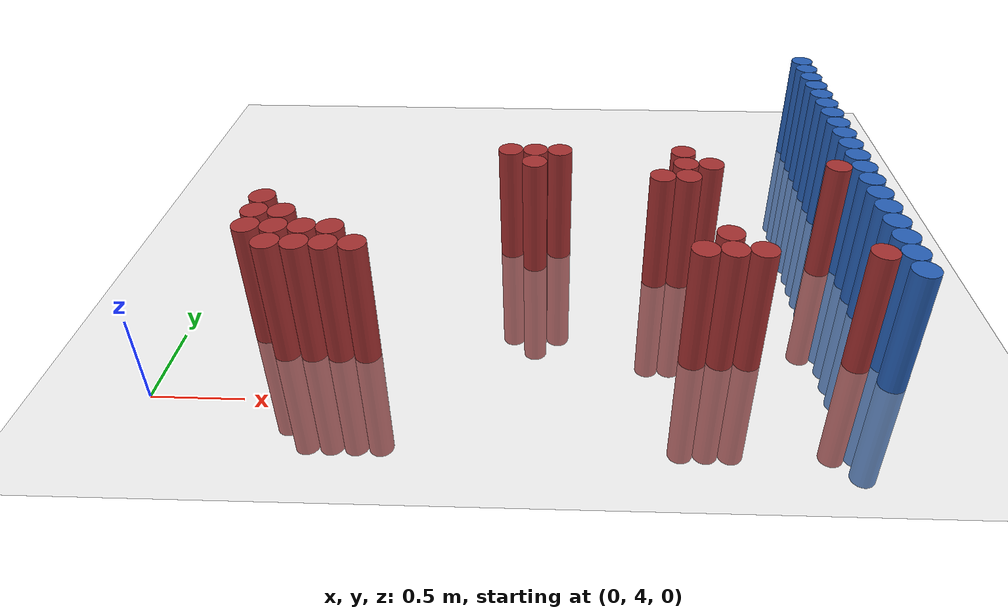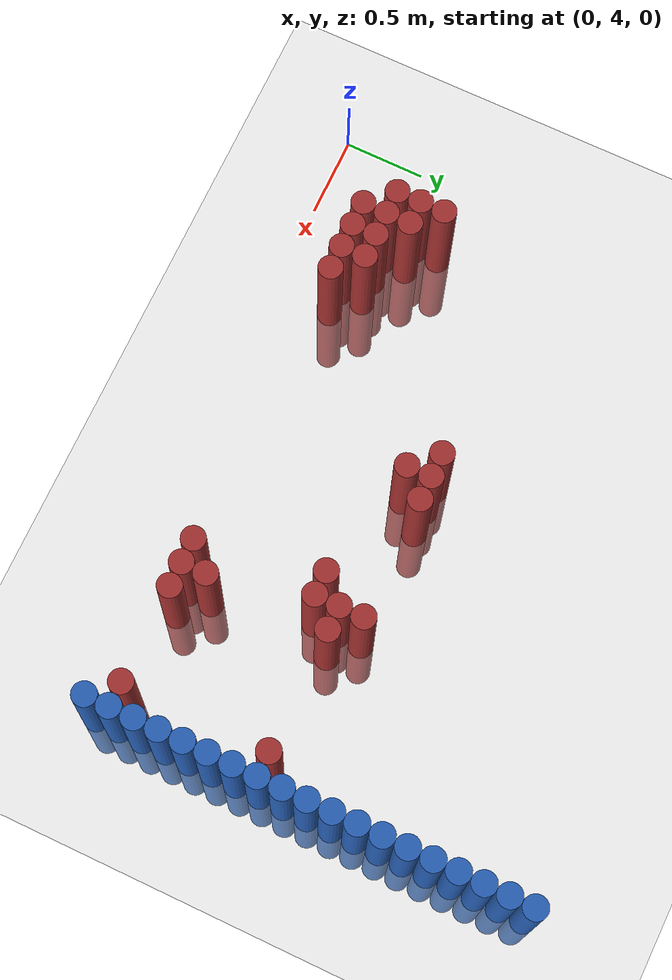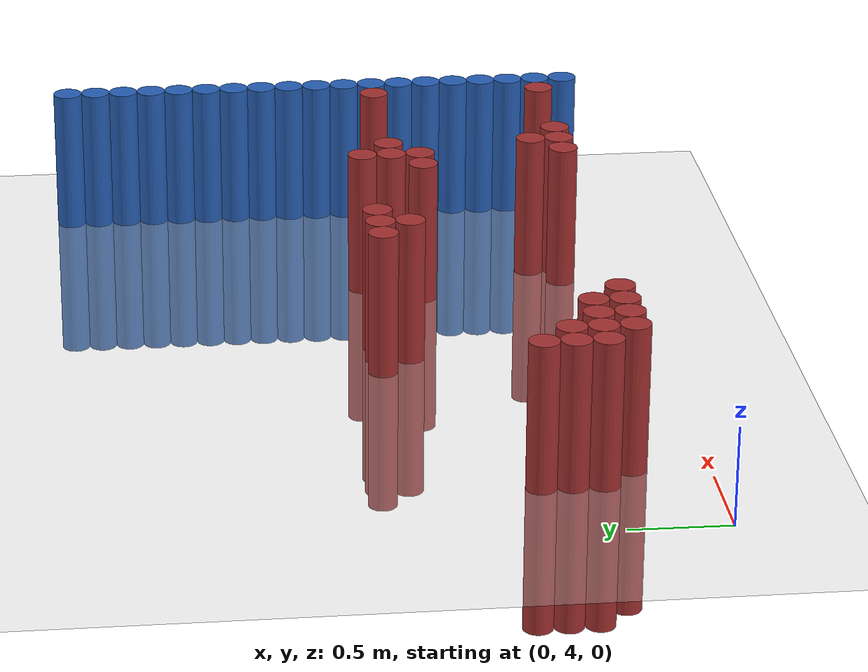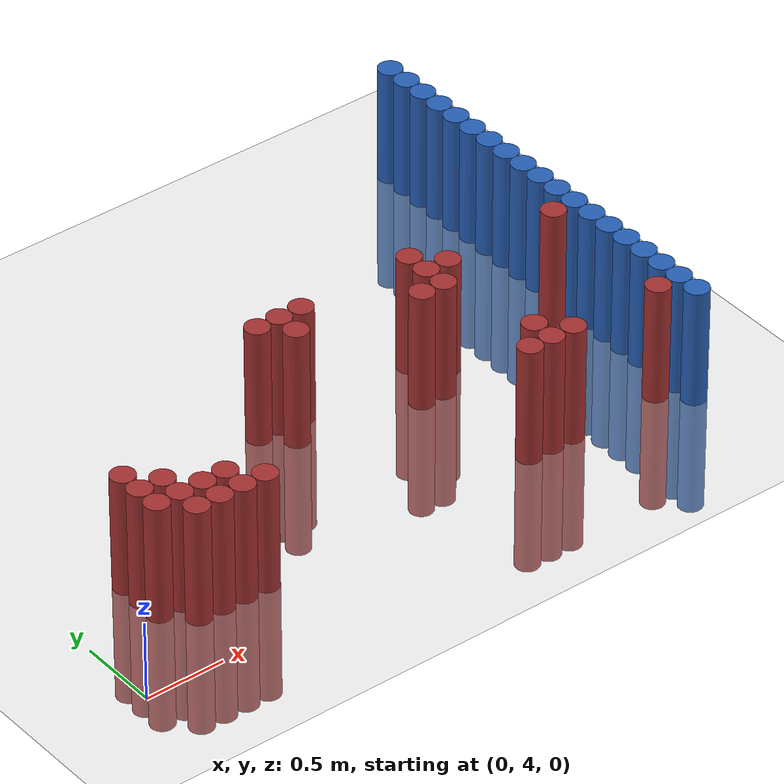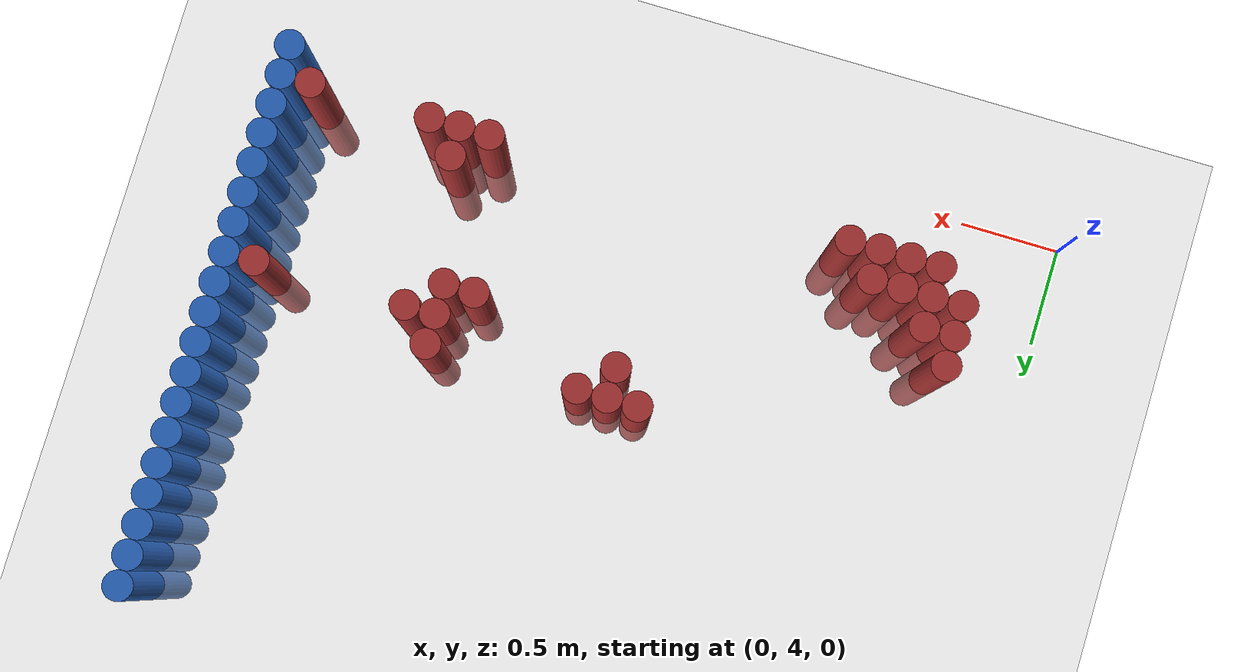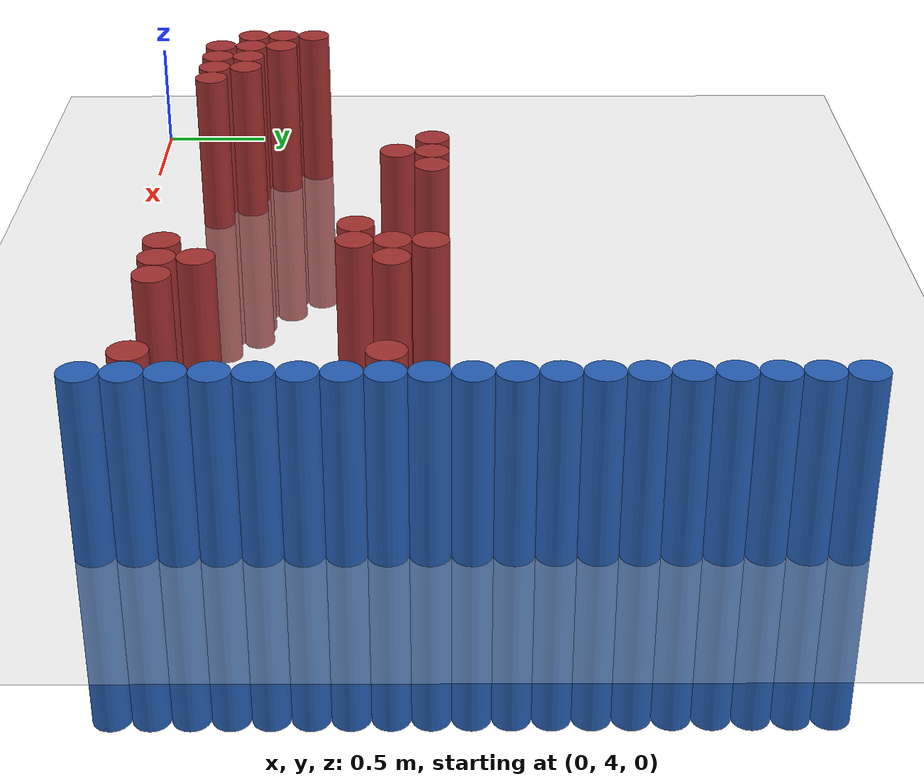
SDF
<sdf version="1.6">
 <world name="default">
  <model name="ground_plane">
   <static>1</static>
   <link name="link">
    <collision name="collision">
     <geometry><plane><normal>0 0 1</normal><size>100 100</size></plane></geometry>
     <surface><friction><ode><mu>100</mu><mu2>50</mu2></ode></friction></surface>
    </collision>
    <visual name="visual">
     <cast_shadows>0</cast_shadows>
     <geometry><plane><normal>0 0 1</normal><size>100 100</size></plane></geometry>
     <material>
      <script><uri>file://media/materials/scripts/gazebo.material</uri><name>Gazebo/Grey</name></script>
     </material>
    </visual>
   </link>
  </model>
  <model name="unit_cylinder_170">
   <static>1</static>
   <pose>3.925000 4.225000 0.000000 0.000000 0.000000 0.000000</pose>
   <link name="link">
    <inertial>
     <mass>1</mass>
     <inertia><ixx>0.145833</ixx><ixy>0</ixy><ixz>0</ixz><iyy>0.145833</iyy><iyz>0</iyz><izz>0.125</izz></inertia>
    </inertial>
    <collision name="collision">
     <geometry><cylinder><radius>0.075000</radius><length>1.5</length></cylinder></geometry>
    </collision>
    <visual name="visual">
     <geometry><cylinder><radius>0.075000</radius><length>1.5</length></cylinder></geometry>
     <material>
      <ambient>0.152000 0.379000 0.720000 1</ambient>
      <diffuse>0.152000 0.379000 0.720000 1</diffuse>
     </material>
     <material>
      <script><name>Gazebo/Grey</name><uri>file://media/materials/scripts/gazebo.material</uri></script>
     </material>
    </visual>
   </link>
  </model>
  <model name="unit_cylinder_172">
   <static>1</static>
   <pose>3.925000 4.375000 0.000000 0.000000 0.000000 0.000000</pose>
   <link name="link">
    <inertial>
     <mass>1</mass>
     <inertia><ixx>0.145833</ixx><ixy>0</ixy><ixz>0</ixz><iyy>0.145833</iyy><iyz>0</iyz><izz>0.125</izz></inertia>
    </inertial>
    <collision name="collision">
     <geometry><cylinder><radius>0.075000</radius><length>1.5</length></cylinder></geometry>
    </collision>
    <visual name="visual">
     <geometry><cylinder><radius>0.075000</radius><length>1.5</length></cylinder></geometry>
     <material>
      <ambient>0.152000 0.379000 0.720000 1</ambient>
      <diffuse>0.152000 0.379000 0.720000 1</diffuse>
     </material>
     <material>
      <script><name>Gazebo/Grey</name><uri>file://media/materials/scripts/gazebo.material</uri></script>
     </material>
    </visual>
   </link>
  </model>
  <model name="unit_cylinder_174">
   <static>1</static>
   <pose>3.925000 4.525000 0.000000 0.000000 0.000000 0.000000</pose>
   <link name="link">
    <inertial>
     <mass>1</mass>
     <inertia><ixx>0.145833</ixx><ixy>0</ixy><ixz>0</ixz><iyy>0.145833</iyy><iyz>0</iyz><izz>0.125</izz></inertia>
    </inertial>
    <collision name="collision">
     <geometry><cylinder><radius>0.075000</radius><length>1.5</length></cylinder></geometry>
    </collision>
    <visual name="visual">
     <geometry><cylinder><radius>0.075000</radius><length>1.5</length></cylinder></geometry>
     <material>
      <ambient>0.152000 0.379000 0.720000 1</ambient>
      <diffuse>0.152000 0.379000 0.720000 1</diffuse>
     </material>
     <material>
      <script><name>Gazebo/Grey</name><uri>file://media/materials/scripts/gazebo.material</uri></script>
     </material>
    </visual>
   </link>
  </model>
  <model name="unit_cylinder_176">
   <static>1</static>
   <pose>3.925000 4.675000 0.000000 0.000000 0.000000 0.000000</pose>
   <link name="link">
    <inertial>
     <mass>1</mass>
     <inertia><ixx>0.145833</ixx><ixy>0</ixy><ixz>0</ixz><iyy>0.145833</iyy><iyz>0</iyz><izz>0.125</izz></inertia>
    </inertial>
    <collision name="collision">
     <geometry><cylinder><radius>0.075000</radius><length>1.5</length></cylinder></geometry>
    </collision>
    <visual name="visual">
     <geometry><cylinder><radius>0.075000</radius><length>1.5</length></cylinder></geometry>
     <material>
      <ambient>0.152000 0.379000 0.720000 1</ambient>
      <diffuse>0.152000 0.379000 0.720000 1</diffuse>
     </material>
     <material>
      <script><name>Gazebo/Grey</name><uri>file://media/materials/scripts/gazebo.material</uri></script>
     </material>
    </visual>
   </link>
  </model>
  <model name="unit_cylinder_178">
   <static>1</static>
   <pose>3.925000 4.825000 0.000000 0.000000 0.000000 0.000000</pose>
   <link name="link">
    <inertial>
     <mass>1</mass>
     <inertia><ixx>0.145833</ixx><ixy>0</ixy><ixz>0</ixz><iyy>0.145833</iyy><iyz>0</iyz><izz>0.125</izz></inertia>
    </inertial>
    <collision name="collision">
     <geometry><cylinder><radius>0.075000</radius><length>1.5</length></cylinder></geometry>
    </collision>
    <visual name="visual">
     <geometry><cylinder><radius>0.075000</radius><length>1.5</length></cylinder></geometry>
     <material>
      <ambient>0.152000 0.379000 0.720000 1</ambient>
      <diffuse>0.152000 0.379000 0.720000 1</diffuse>
     </material>
     <material>
      <script><name>Gazebo/Grey</name><uri>file://media/materials/scripts/gazebo.material</uri></script>
     </material>
    </visual>
   </link>
  </model>
  <model name="unit_cylinder_180">
   <static>1</static>
   <pose>3.925000 4.975000 0.000000 0.000000 0.000000 0.000000</pose>
   <link name="link">
    <inertial>
     <mass>1</mass>
     <inertia><ixx>0.145833</ixx><ixy>0</ixy><ixz>0</ixz><iyy>0.145833</iyy><iyz>0</iyz><izz>0.125</izz></inertia>
    </inertial>
    <collision name="collision">
     <geometry><cylinder><radius>0.075000</radius><length>1.5</length></cylinder></geometry>
    </collision>
    <visual name="visual">
     <geometry><cylinder><radius>0.075000</radius><length>1.5</length></cylinder></geometry>
     <material>
      <ambient>0.152000 0.379000 0.720000 1</ambient>
      <diffuse>0.152000 0.379000 0.720000 1</diffuse>
     </material>
     <material>
      <script><name>Gazebo/Grey</name><uri>file://media/materials/scripts/gazebo.material</uri></script>
     </material>
    </visual>
   </link>
  </model>
  <model name="unit_cylinder_182">
   <static>1</static>
   <pose>3.925000 5.125000 0.000000 0.000000 0.000000 0.000000</pose>
   <link name="link">
    <inertial>
     <mass>1</mass>
     <inertia><ixx>0.145833</ixx><ixy>0</ixy><ixz>0</ixz><iyy>0.145833</iyy><iyz>0</iyz><izz>0.125</izz></inertia>
    </inertial>
    <collision name="collision">
     <geometry><cylinder><radius>0.075000</radius><length>1.5</length></cylinder></geometry>
    </collision>
    <visual name="visual">
     <geometry><cylinder><radius>0.075000</radius><length>1.5</length></cylinder></geometry>
     <material>
      <ambient>0.152000 0.379000 0.720000 1</ambient>
      <diffuse>0.152000 0.379000 0.720000 1</diffuse>
     </material>
     <material>
      <script><name>Gazebo/Grey</name><uri>file://media/materials/scripts/gazebo.material</uri></script>
     </material>
    </visual>
   </link>
  </model>
  <model name="unit_cylinder_184">
   <static>1</static>
   <pose>3.925000 5.275000 0.000000 0.000000 0.000000 0.000000</pose>
   <link name="link">
    <inertial>
     <mass>1</mass>
     <inertia><ixx>0.145833</ixx><ixy>0</ixy><ixz>0</ixz><iyy>0.145833</iyy><iyz>0</iyz><izz>0.125</izz></inertia>
    </inertial>
    <collision name="collision">
     <geometry><cylinder><radius>0.075000</radius><length>1.5</length></cylinder></geometry>
    </collision>
    <visual name="visual">
     <geometry><cylinder><radius>0.075000</radius><length>1.5</length></cylinder></geometry>
     <material>
      <ambient>0.152000 0.379000 0.720000 1</ambient>
      <diffuse>0.152000 0.379000 0.720000 1</diffuse>
     </material>
     <material>
      <script><name>Gazebo/Grey</name><uri>file://media/materials/scripts/gazebo.material</uri></script>
     </material>
    </visual>
   </link>
  </model>
  <model name="unit_cylinder_186">
   <static>1</static>
   <pose>3.925000 5.425000 0.000000 0.000000 0.000000 0.000000</pose>
   <link name="link">
    <inertial>
     <mass>1</mass>
     <inertia><ixx>0.145833</ixx><ixy>0</ixy><ixz>0</ixz><iyy>0.145833</iyy><iyz>0</iyz><izz>0.125</izz></inertia>
    </inertial>
    <collision name="collision">
     <geometry><cylinder><radius>0.075000</radius><length>1.5</length></cylinder></geometry>
    </collision>
    <visual name="visual">
     <geometry><cylinder><radius>0.075000</radius><length>1.5</length></cylinder></geometry>
     <material>
      <ambient>0.152000 0.379000 0.720000 1</ambient>
      <diffuse>0.152000 0.379000 0.720000 1</diffuse>
     </material>
     <material>
      <script><name>Gazebo/Grey</name><uri>file://media/materials/scripts/gazebo.material</uri></script>
     </material>
    </visual>
   </link>
  </model>
  <model name="unit_cylinder_188">
   <static>1</static>
   <pose>3.925000 5.575000 0.000000 0.000000 0.000000 0.000000</pose>
   <link name="link">
    <inertial>
     <mass>1</mass>
     <inertia><ixx>0.145833</ixx><ixy>0</ixy><ixz>0</ixz><iyy>0.145833</iyy><iyz>0</iyz><izz>0.125</izz></inertia>
    </inertial>
    <collision name="collision">
     <geometry><cylinder><radius>0.075000</radius><length>1.5</length></cylinder></geometry>
    </collision>
    <visual name="visual">
     <geometry><cylinder><radius>0.075000</radius><length>1.5</length></cylinder></geometry>
     <material>
      <ambient>0.152000 0.379000 0.720000 1</ambient>
      <diffuse>0.152000 0.379000 0.720000 1</diffuse>
     </material>
     <material>
      <script><name>Gazebo/Grey</name><uri>file://media/materials/scripts/gazebo.material</uri></script>
     </material>
    </visual>
   </link>
  </model>
  <model name="unit_cylinder_190">
   <static>1</static>
   <pose>3.925000 5.725000 0.000000 0.000000 0.000000 0.000000</pose>
   <link name="link">
    <inertial>
     <mass>1</mass>
     <inertia><ixx>0.145833</ixx><ixy>0</ixy><ixz>0</ixz><iyy>0.145833</iyy><iyz>0</iyz><izz>0.125</izz></inertia>
    </inertial>
    <collision name="collision">
     <geometry><cylinder><radius>0.075000</radius><length>1.5</length></cylinder></geometry>
    </collision>
    <visual name="visual">
     <geometry><cylinder><radius>0.075000</radius><length>1.5</length></cylinder></geometry>
     <material>
      <ambient>0.152000 0.379000 0.720000 1</ambient>
      <diffuse>0.152000 0.379000 0.720000 1</diffuse>
     </material>
     <material>
      <script><name>Gazebo/Grey</name><uri>file://media/materials/scripts/gazebo.material</uri></script>
     </material>
    </visual>
   </link>
  </model>
  <model name="unit_cylinder_192">
   <static>1</static>
   <pose>3.925000 5.875000 0.000000 0.000000 0.000000 0.000000</pose>
   <link name="link">
    <inertial>
     <mass>1</mass>
     <inertia><ixx>0.145833</ixx><ixy>0</ixy><ixz>0</ixz><iyy>0.145833</iyy><iyz>0</iyz><izz>0.125</izz></inertia>
    </inertial>
    <collision name="collision">
     <geometry><cylinder><radius>0.075000</radius><length>1.5</length></cylinder></geometry>
    </collision>
    <visual name="visual">
     <geometry><cylinder><radius>0.075000</radius><length>1.5</length></cylinder></geometry>
     <material>
      <ambient>0.152000 0.379000 0.720000 1</ambient>
      <diffuse>0.152000 0.379000 0.720000 1</diffuse>
     </material>
     <material>
      <script><name>Gazebo/Grey</name><uri>file://media/materials/scripts/gazebo.material</uri></script>
     </material>
    </visual>
   </link>
  </model>
  <model name="unit_cylinder_194">
   <static>1</static>
   <pose>3.925000 6.025000 0.000000 0.000000 0.000000 0.000000</pose>
   <link name="link">
    <inertial>
     <mass>1</mass>
     <inertia><ixx>0.145833</ixx><ixy>0</ixy><ixz>0</ixz><iyy>0.145833</iyy><iyz>0</iyz><izz>0.125</izz></inertia>
    </inertial>
    <collision name="collision">
     <geometry><cylinder><radius>0.075000</radius><length>1.5</length></cylinder></geometry>
    </collision>
    <visual name="visual">
     <geometry><cylinder><radius>0.075000</radius><length>1.5</length></cylinder></geometry>
     <material>
      <ambient>0.152000 0.379000 0.720000 1</ambient>
      <diffuse>0.152000 0.379000 0.720000 1</diffuse>
     </material>
     <material>
      <script><name>Gazebo/Grey</name><uri>file://media/materials/scripts/gazebo.material</uri></script>
     </material>
    </visual>
   </link>
  </model>
  <model name="unit_cylinder_196">
   <static>1</static>
   <pose>3.925000 6.175000 0.000000 0.000000 0.000000 0.000000</pose>
   <link name="link">
    <inertial>
     <mass>1</mass>
     <inertia><ixx>0.145833</ixx><ixy>0</ixy><ixz>0</ixz><iyy>0.145833</iyy><iyz>0</iyz><izz>0.125</izz></inertia>
    </inertial>
    <collision name="collision">
     <geometry><cylinder><radius>0.075000</radius><length>1.5</length></cylinder></geometry>
    </collision>
    <visual name="visual">
     <geometry><cylinder><radius>0.075000</radius><length>1.5</length></cylinder></geometry>
     <material>
      <ambient>0.152000 0.379000 0.720000 1</ambient>
      <diffuse>0.152000 0.379000 0.720000 1</diffuse>
     </material>
     <material>
      <script><name>Gazebo/Grey</name><uri>file://media/materials/scripts/gazebo.material</uri></script>
     </material>
    </visual>
   </link>
  </model>
  <model name="unit_cylinder_198">
   <static>1</static>
   <pose>3.925000 6.325000 0.000000 0.000000 0.000000 0.000000</pose>
   <link name="link">
    <inertial>
     <mass>1</mass>
     <inertia><ixx>0.145833</ixx><ixy>0</ixy><ixz>0</ixz><iyy>0.145833</iyy><iyz>0</iyz><izz>0.125</izz></inertia>
    </inertial>
    <collision name="collision">
     <geometry><cylinder><radius>0.075000</radius><length>1.5</length></cylinder></geometry>
    </collision>
    <visual name="visual">
     <geometry><cylinder><radius>0.075000</radius><length>1.5</length></cylinder></geometry>
     <material>
      <ambient>0.152000 0.379000 0.720000 1</ambient>
      <diffuse>0.152000 0.379000 0.720000 1</diffuse>
     </material>
     <material>
      <script><name>Gazebo/Grey</name><uri>file://media/materials/scripts/gazebo.material</uri></script>
     </material>
    </visual>
   </link>
  </model>
  <model name="unit_cylinder_200">
   <static>1</static>
   <pose>3.925000 6.475000 0.000000 0.000000 0.000000 0.000000</pose>
   <link name="link">
    <inertial>
     <mass>1</mass>
     <inertia><ixx>0.145833</ixx><ixy>0</ixy><ixz>0</ixz><iyy>0.145833</iyy><iyz>0</iyz><izz>0.125</izz></inertia>
    </inertial>
    <collision name="collision">
     <geometry><cylinder><radius>0.075000</radius><length>1.5</length></cylinder></geometry>
    </collision>
    <visual name="visual">
     <geometry><cylinder><radius>0.075000</radius><length>1.5</length></cylinder></geometry>
     <material>
      <ambient>0.152000 0.379000 0.720000 1</ambient>
      <diffuse>0.152000 0.379000 0.720000 1</diffuse>
     </material>
     <material>
      <script><name>Gazebo/Grey</name><uri>file://media/materials/scripts/gazebo.material</uri></script>
     </material>
    </visual>
   </link>
  </model>
  <model name="unit_cylinder_202">
   <static>1</static>
   <pose>3.925000 6.625000 0.000000 0.000000 0.000000 0.000000</pose>
   <link name="link">
    <inertial>
     <mass>1</mass>
     <inertia><ixx>0.145833</ixx><ixy>0</ixy><ixz>0</ixz><iyy>0.145833</iyy><iyz>0</iyz><izz>0.125</izz></inertia>
    </inertial>
    <collision name="collision">
     <geometry><cylinder><radius>0.075000</radius><length>1.5</length></cylinder></geometry>
    </collision>
    <visual name="visual">
     <geometry><cylinder><radius>0.075000</radius><length>1.5</length></cylinder></geometry>
     <material>
      <ambient>0.152000 0.379000 0.720000 1</ambient>
      <diffuse>0.152000 0.379000 0.720000 1</diffuse>
     </material>
     <material>
      <script><name>Gazebo/Grey</name><uri>file://media/materials/scripts/gazebo.material</uri></script>
     </material>
    </visual>
   </link>
  </model>
  <model name="unit_cylinder_204">
   <static>1</static>
   <pose>3.925000 6.775000 0.000000 0.000000 0.000000 0.000000</pose>
   <link name="link">
    <inertial>
     <mass>1</mass>
     <inertia><ixx>0.145833</ixx><ixy>0</ixy><ixz>0</ixz><iyy>0.145833</iyy><iyz>0</iyz><izz>0.125</izz></inertia>
    </inertial>
    <collision name="collision">
     <geometry><cylinder><radius>0.075000</radius><length>1.5</length></cylinder></geometry>
    </collision>
    <visual name="visual">
     <geometry><cylinder><radius>0.075000</radius><length>1.5</length></cylinder></geometry>
     <material>
      <ambient>0.152000 0.379000 0.720000 1</ambient>
      <diffuse>0.152000 0.379000 0.720000 1</diffuse>
     </material>
     <material>
      <script><name>Gazebo/Grey</name><uri>file://media/materials/scripts/gazebo.material</uri></script>
     </material>
    </visual>
   </link>
  </model>
  <model name="unit_cylinder_206">
   <static>1</static>
   <pose>3.925000 6.925000 0.000000 0.000000 0.000000 0.000000</pose>
   <link name="link">
    <inertial>
     <mass>1</mass>
     <inertia><ixx>0.145833</ixx><ixy>0</ixy><ixz>0</ixz><iyy>0.145833</iyy><iyz>0</iyz><izz>0.125</izz></inertia>
    </inertial>
    <collision name="collision">
     <geometry><cylinder><radius>0.075000</radius><length>1.5</length></cylinder></geometry>
    </collision>
    <visual name="visual">
     <geometry><cylinder><radius>0.075000</radius><length>1.5</length></cylinder></geometry>
     <material>
      <ambient>0.152000 0.379000 0.720000 1</ambient>
      <diffuse>0.152000 0.379000 0.720000 1</diffuse>
     </material>
     <material>
      <script><name>Gazebo/Grey</name><uri>file://media/materials/scripts/gazebo.material</uri></script>
     </material>
    </visual>
   </link>
  </model>
  <model name="unit_cylinder_371">
   <static>1</static>
   <pose>0.475000 4.525000 0.000000 0.000000 0.000000 0.000000</pose>
   <link name="link">
    <inertial>
     <mass>1</mass>
     <inertia><ixx>0.145833</ixx><ixy>0</ixy><ixz>0</ixz><iyy>0.145833</iyy><iyz>0</iyz><izz>0.125</izz></inertia>
    </inertial>
    <collision name="collision">
     <geometry><cylinder><radius>0.075000</radius><length>1.5</length></cylinder></geometry>
    </collision>
    <visual name="visual">
     <geometry><cylinder><radius>0.075000</radius><length>1.5</length></cylinder></geometry>
     <material>
      <ambient>0.648000 0.192000 0.192000 1</ambient>
      <diffuse>0.648000 0.192000 0.192000 1</diffuse>
     </material>
     <material>
      <script><name>Gazebo/Grey</name><uri>file://media/materials/scripts/gazebo.material</uri></script>
     </material>
    </visual>
   </link>
  </model>
  <model name="unit_cylinder_372">
   <static>1</static>
   <pose>0.475000 4.675000 0.000000 0.000000 0.000000 0.000000</pose>
   <link name="link">
    <inertial>
     <mass>1</mass>
     <inertia><ixx>0.145833</ixx><ixy>0</ixy><ixz>0</ixz><iyy>0.145833</iyy><iyz>0</iyz><izz>0.125</izz></inertia>
    </inertial>
    <collision name="collision">
     <geometry><cylinder><radius>0.075000</radius><length>1.5</length></cylinder></geometry>
    </collision>
    <visual name="visual">
     <geometry><cylinder><radius>0.075000</radius><length>1.5</length></cylinder></geometry>
     <material>
      <ambient>0.648000 0.192000 0.192000 1</ambient>
      <diffuse>0.648000 0.192000 0.192000 1</diffuse>
     </material>
     <material>
      <script><name>Gazebo/Grey</name><uri>file://media/materials/scripts/gazebo.material</uri></script>
     </material>
    </visual>
   </link>
  </model>
  <model name="unit_cylinder_373">
   <static>1</static>
   <pose>0.475000 4.825000 0.000000 0.000000 0.000000 0.000000</pose>
   <link name="link">
    <inertial>
     <mass>1</mass>
     <inertia><ixx>0.145833</ixx><ixy>0</ixy><ixz>0</ixz><iyy>0.145833</iyy><iyz>0</iyz><izz>0.125</izz></inertia>
    </inertial>
    <collision name="collision">
     <geometry><cylinder><radius>0.075000</radius><length>1.5</length></cylinder></geometry>
    </collision>
    <visual name="visual">
     <geometry><cylinder><radius>0.075000</radius><length>1.5</length></cylinder></geometry>
     <material>
      <ambient>0.648000 0.192000 0.192000 1</ambient>
      <diffuse>0.648000 0.192000 0.192000 1</diffuse>
     </material>
     <material>
      <script><name>Gazebo/Grey</name><uri>file://media/materials/scripts/gazebo.material</uri></script>
     </material>
    </visual>
   </link>
  </model>
  <model name="unit_cylinder_376">
   <static>1</static>
   <pose>0.625000 4.375000 0.000000 0.000000 0.000000 0.000000</pose>
   <link name="link">
    <inertial>
     <mass>1</mass>
     <inertia><ixx>0.145833</ixx><ixy>0</ixy><ixz>0</ixz><iyy>0.145833</iyy><iyz>0</iyz><izz>0.125</izz></inertia>
    </inertial>
    <collision name="collision">
     <geometry><cylinder><radius>0.075000</radius><length>1.5</length></cylinder></geometry>
    </collision>
    <visual name="visual">
     <geometry><cylinder><radius>0.075000</radius><length>1.5</length></cylinder></geometry>
     <material>
      <ambient>0.648000 0.192000 0.192000 1</ambient>
      <diffuse>0.648000 0.192000 0.192000 1</diffuse>
     </material>
     <material>
      <script><name>Gazebo/Grey</name><uri>file://media/materials/scripts/gazebo.material</uri></script>
     </material>
    </visual>
   </link>
  </model>
  <model name="unit_cylinder_377">
   <static>1</static>
   <pose>0.625000 4.525000 0.000000 0.000000 0.000000 0.000000</pose>
   <link name="link">
    <inertial>
     <mass>1</mass>
     <inertia><ixx>0.145833</ixx><ixy>0</ixy><ixz>0</ixz><iyy>0.145833</iyy><iyz>0</iyz><izz>0.125</izz></inertia>
    </inertial>
    <collision name="collision">
     <geometry><cylinder><radius>0.075000</radius><length>1.5</length></cylinder></geometry>
    </collision>
    <visual name="visual">
     <geometry><cylinder><radius>0.075000</radius><length>1.5</length></cylinder></geometry>
     <material>
      <ambient>0.648000 0.192000 0.192000 1</ambient>
      <diffuse>0.648000 0.192000 0.192000 1</diffuse>
     </material>
     <material>
      <script><name>Gazebo/Grey</name><uri>file://media/materials/scripts/gazebo.material</uri></script>
     </material>
    </visual>
   </link>
  </model>
  <model name="unit_cylinder_378">
   <static>1</static>
   <pose>0.625000 4.675000 0.000000 0.000000 0.000000 0.000000</pose>
   <link name="link">
    <inertial>
     <mass>1</mass>
     <inertia><ixx>0.145833</ixx><ixy>0</ixy><ixz>0</ixz><iyy>0.145833</iyy><iyz>0</iyz><izz>0.125</izz></inertia>
    </inertial>
    <collision name="collision">
     <geometry><cylinder><radius>0.075000</radius><length>1.5</length></cylinder></geometry>
    </collision>
    <visual name="visual">
     <geometry><cylinder><radius>0.075000</radius><length>1.5</length></cylinder></geometry>
     <material>
      <ambient>0.648000 0.192000 0.192000 1</ambient>
      <diffuse>0.648000 0.192000 0.192000 1</diffuse>
     </material>
     <material>
      <script><name>Gazebo/Grey</name><uri>file://media/materials/scripts/gazebo.material</uri></script>
     </material>
    </visual>
   </link>
  </model>
  <model name="unit_cylinder_382">
   <static>1</static>
   <pose>0.775000 4.375000 0.000000 0.000000 0.000000 0.000000</pose>
   <link name="link">
    <inertial>
     <mass>1</mass>
     <inertia><ixx>0.145833</ixx><ixy>0</ixy><ixz>0</ixz><iyy>0.145833</iyy><iyz>0</iyz><izz>0.125</izz></inertia>
    </inertial>
    <collision name="collision">
     <geometry><cylinder><radius>0.075000</radius><length>1.5</length></cylinder></geometry>
    </collision>
    <visual name="visual">
     <geometry><cylinder><radius>0.075000</radius><length>1.5</length></cylinder></geometry>
     <material>
      <ambient>0.648000 0.192000 0.192000 1</ambient>
      <diffuse>0.648000 0.192000 0.192000 1</diffuse>
     </material>
     <material>
      <script><name>Gazebo/Grey</name><uri>file://media/materials/scripts/gazebo.material</uri></script>
     </material>
    </visual>
   </link>
  </model>
  <model name="unit_cylinder_383">
   <static>1</static>
   <pose>0.775000 4.525000 0.000000 0.000000 0.000000 0.000000</pose>
   <link name="link">
    <inertial>
     <mass>1</mass>
     <inertia><ixx>0.145833</ixx><ixy>0</ixy><ixz>0</ixz><iyy>0.145833</iyy><iyz>0</iyz><izz>0.125</izz></inertia>
    </inertial>
    <collision name="collision">
     <geometry><cylinder><radius>0.075000</radius><length>1.5</length></cylinder></geometry>
    </collision>
    <visual name="visual">
     <geometry><cylinder><radius>0.075000</radius><length>1.5</length></cylinder></geometry>
     <material>
      <ambient>0.648000 0.192000 0.192000 1</ambient>
      <diffuse>0.648000 0.192000 0.192000 1</diffuse>
     </material>
     <material>
      <script><name>Gazebo/Grey</name><uri>file://media/materials/scripts/gazebo.material</uri></script>
     </material>
    </visual>
   </link>
  </model>
  <model name="unit_cylinder_391">
   <static>1</static>
   <pose>0.925000 4.375000 0.000000 0.000000 0.000000 0.000000</pose>
   <link name="link">
    <inertial>
     <mass>1</mass>
     <inertia><ixx>0.145833</ixx><ixy>0</ixy><ixz>0</ixz><iyy>0.145833</iyy><iyz>0</iyz><izz>0.125</izz></inertia>
    </inertial>
    <collision name="collision">
     <geometry><cylinder><radius>0.075000</radius><length>1.5</length></cylinder></geometry>
    </collision>
    <visual name="visual">
     <geometry><cylinder><radius>0.075000</radius><length>1.5</length></cylinder></geometry>
     <material>
      <ambient>0.648000 0.192000 0.192000 1</ambient>
      <diffuse>0.648000 0.192000 0.192000 1</diffuse>
     </material>
     <material>
      <script><name>Gazebo/Grey</name><uri>file://media/materials/scripts/gazebo.material</uri></script>
     </material>
    </visual>
   </link>
  </model>
  <model name="unit_cylinder_392">
   <static>1</static>
   <pose>0.925000 4.525000 0.000000 0.000000 0.000000 0.000000</pose>
   <link name="link">
    <inertial>
     <mass>1</mass>
     <inertia><ixx>0.145833</ixx><ixy>0</ixy><ixz>0</ixz><iyy>0.145833</iyy><iyz>0</iyz><izz>0.125</izz></inertia>
    </inertial>
    <collision name="collision">
     <geometry><cylinder><radius>0.075000</radius><length>1.5</length></cylinder></geometry>
    </collision>
    <visual name="visual">
     <geometry><cylinder><radius>0.075000</radius><length>1.5</length></cylinder></geometry>
     <material>
      <ambient>0.648000 0.192000 0.192000 1</ambient>
      <diffuse>0.648000 0.192000 0.192000 1</diffuse>
     </material>
     <material>
      <script><name>Gazebo/Grey</name><uri>file://media/materials/scripts/gazebo.material</uri></script>
     </material>
    </visual>
   </link>
  </model>
  <model name="unit_cylinder_397">
   <static>1</static>
   <pose>1.075000 4.375000 0.000000 0.000000 0.000000 0.000000</pose>
   <link name="link">
    <inertial>
     <mass>1</mass>
     <inertia><ixx>0.145833</ixx><ixy>0</ixy><ixz>0</ixz><iyy>0.145833</iyy><iyz>0</iyz><izz>0.125</izz></inertia>
    </inertial>
    <collision name="collision">
     <geometry><cylinder><radius>0.075000</radius><length>1.5</length></cylinder></geometry>
    </collision>
    <visual name="visual">
     <geometry><cylinder><radius>0.075000</radius><length>1.5</length></cylinder></geometry>
     <material>
      <ambient>0.648000 0.192000 0.192000 1</ambient>
      <diffuse>0.648000 0.192000 0.192000 1</diffuse>
     </material>
     <material>
      <script><name>Gazebo/Grey</name><uri>file://media/materials/scripts/gazebo.material</uri></script>
     </material>
    </visual>
   </link>
  </model>
  <model name="unit_cylinder_412">
   <static>1</static>
   <pose>1.825000 5.425000 0.000000 0.000000 0.000000 0.000000</pose>
   <link name="link">
    <inertial>
     <mass>1</mass>
     <inertia><ixx>0.145833</ixx><ixy>0</ixy><ixz>0</ixz><iyy>0.145833</iyy><iyz>0</iyz><izz>0.125</izz></inertia>
    </inertial>
    <collision name="collision">
     <geometry><cylinder><radius>0.075000</radius><length>1.5</length></cylinder></geometry>
    </collision>
    <visual name="visual">
     <geometry><cylinder><radius>0.075000</radius><length>1.5</length></cylinder></geometry>
     <material>
      <ambient>0.648000 0.192000 0.192000 1</ambient>
      <diffuse>0.648000 0.192000 0.192000 1</diffuse>
     </material>
     <material>
      <script><name>Gazebo/Grey</name><uri>file://media/materials/scripts/gazebo.material</uri></script>
     </material>
    </visual>
   </link>
  </model>
  <model name="unit_cylinder_417">
   <static>1</static>
   <pose>1.975000 5.275000 0.000000 0.000000 0.000000 0.000000</pose>
   <link name="link">
    <inertial>
     <mass>1</mass>
     <inertia><ixx>0.145833</ixx><ixy>0</ixy><ixz>0</ixz><iyy>0.145833</iyy><iyz>0</iyz><izz>0.125</izz></inertia>
    </inertial>
    <collision name="collision">
     <geometry><cylinder><radius>0.075000</radius><length>1.5</length></cylinder></geometry>
    </collision>
    <visual name="visual">
     <geometry><cylinder><radius>0.075000</radius><length>1.5</length></cylinder></geometry>
     <material>
      <ambient>0.648000 0.192000 0.192000 1</ambient>
      <diffuse>0.648000 0.192000 0.192000 1</diffuse>
     </material>
     <material>
      <script><name>Gazebo/Grey</name><uri>file://media/materials/scripts/gazebo.material</uri></script>
     </material>
    </visual>
   </link>
  </model>
  <model name="unit_cylinder_418">
   <static>1</static>
   <pose>1.975000 5.425000 0.000000 0.000000 0.000000 0.000000</pose>
   <link name="link">
    <inertial>
     <mass>1</mass>
     <inertia><ixx>0.145833</ixx><ixy>0</ixy><ixz>0</ixz><iyy>0.145833</iyy><iyz>0</iyz><izz>0.125</izz></inertia>
    </inertial>
    <collision name="collision">
     <geometry><cylinder><radius>0.075000</radius><length>1.5</length></cylinder></geometry>
    </collision>
    <visual name="visual">
     <geometry><cylinder><radius>0.075000</radius><length>1.5</length></cylinder></geometry>
     <material>
      <ambient>0.648000 0.192000 0.192000 1</ambient>
      <diffuse>0.648000 0.192000 0.192000 1</diffuse>
     </material>
     <material>
      <script><name>Gazebo/Grey</name><uri>file://media/materials/scripts/gazebo.material</uri></script>
     </material>
    </visual>
   </link>
  </model>
  <model name="unit_cylinder_419">
   <static>1</static>
   <pose>2.125000 5.425000 0.000000 0.000000 0.000000 0.000000</pose>
   <link name="link">
    <inertial>
     <mass>1</mass>
     <inertia><ixx>0.145833</ixx><ixy>0</ixy><ixz>0</ixz><iyy>0.145833</iyy><iyz>0</iyz><izz>0.125</izz></inertia>
    </inertial>
    <collision name="collision">
     <geometry><cylinder><radius>0.075000</radius><length>1.5</length></cylinder></geometry>
    </collision>
    <visual name="visual">
     <geometry><cylinder><radius>0.075000</radius><length>1.5</length></cylinder></geometry>
     <material>
      <ambient>0.648000 0.192000 0.192000 1</ambient>
      <diffuse>0.648000 0.192000 0.192000 1</diffuse>
     </material>
     <material>
      <script><name>Gazebo/Grey</name><uri>file://media/materials/scripts/gazebo.material</uri></script>
     </material>
    </visual>
   </link>
  </model>
  <model name="unit_cylinder_433">
   <static>1</static>
   <pose>2.725000 5.125000 0.000000 0.000000 0.000000 0.000000</pose>
   <link name="link">
    <inertial>
     <mass>1</mass>
     <inertia><ixx>0.145833</ixx><ixy>0</ixy><ixz>0</ixz><iyy>0.145833</iyy><iyz>0</iyz><izz>0.125</izz></inertia>
    </inertial>
    <collision name="collision">
     <geometry><cylinder><radius>0.075000</radius><length>1.5</length></cylinder></geometry>
    </collision>
    <visual name="visual">
     <geometry><cylinder><radius>0.075000</radius><length>1.5</length></cylinder></geometry>
     <material>
      <ambient>0.648000 0.192000 0.192000 1</ambient>
      <diffuse>0.648000 0.192000 0.192000 1</diffuse>
     </material>
     <material>
      <script><name>Gazebo/Grey</name><uri>file://media/materials/scripts/gazebo.material</uri></script>
     </material>
    </visual>
   </link>
  </model>
  <model name="unit_cylinder_437">
   <static>1</static>
   <pose>2.875000 4.375000 0.000000 0.000000 0.000000 0.000000</pose>
   <link name="link">
    <inertial>
     <mass>1</mass>
     <inertia><ixx>0.145833</ixx><ixy>0</ixy><ixz>0</ixz><iyy>0.145833</iyy><iyz>0</iyz><izz>0.125</izz></inertia>
    </inertial>
    <collision name="collision">
     <geometry><cylinder><radius>0.075000</radius><length>1.5</length></cylinder></geometry>
    </collision>
    <visual name="visual">
     <geometry><cylinder><radius>0.075000</radius><length>1.5</length></cylinder></geometry>
     <material>
      <ambient>0.648000 0.192000 0.192000 1</ambient>
      <diffuse>0.648000 0.192000 0.192000 1</diffuse>
     </material>
     <material>
      <script><name>Gazebo/Grey</name><uri>file://media/materials/scripts/gazebo.material</uri></script>
     </material>
    </visual>
   </link>
  </model>
  <model name="unit_cylinder_438">
   <static>1</static>
   <pose>2.875000 5.125000 0.000000 0.000000 0.000000 0.000000</pose>
   <link name="link">
    <inertial>
     <mass>1</mass>
     <inertia><ixx>0.145833</ixx><ixy>0</ixy><ixz>0</ixz><iyy>0.145833</iyy><iyz>0</iyz><izz>0.125</izz></inertia>
    </inertial>
    <collision name="collision">
     <geometry><cylinder><radius>0.075000</radius><length>1.5</length></cylinder></geometry>
    </collision>
    <visual name="visual">
     <geometry><cylinder><radius>0.075000</radius><length>1.5</length></cylinder></geometry>
     <material>
      <ambient>0.648000 0.192000 0.192000 1</ambient>
      <diffuse>0.648000 0.192000 0.192000 1</diffuse>
     </material>
     <material>
      <script><name>Gazebo/Grey</name><uri>file://media/materials/scripts/gazebo.material</uri></script>
     </material>
    </visual>
   </link>
  </model>
  <model name="unit_cylinder_439">
   <static>1</static>
   <pose>2.875000 5.275000 0.000000 0.000000 0.000000 0.000000</pose>
   <link name="link">
    <inertial>
     <mass>1</mass>
     <inertia><ixx>0.145833</ixx><ixy>0</ixy><ixz>0</ixz><iyy>0.145833</iyy><iyz>0</iyz><izz>0.125</izz></inertia>
    </inertial>
    <collision name="collision">
     <geometry><cylinder><radius>0.075000</radius><length>1.5</length></cylinder></geometry>
    </collision>
    <visual name="visual">
     <geometry><cylinder><radius>0.075000</radius><length>1.5</length></cylinder></geometry>
     <material>
      <ambient>0.648000 0.192000 0.192000 1</ambient>
      <diffuse>0.648000 0.192000 0.192000 1</diffuse>
     </material>
     <material>
      <script><name>Gazebo/Grey</name><uri>file://media/materials/scripts/gazebo.material</uri></script>
     </material>
    </visual>
   </link>
  </model>
  <model name="unit_cylinder_440">
   <static>1</static>
   <pose>2.875000 5.425000 0.000000 0.000000 0.000000 0.000000</pose>
   <link name="link">
    <inertial>
     <mass>1</mass>
     <inertia><ixx>0.145833</ixx><ixy>0</ixy><ixz>0</ixz><iyy>0.145833</iyy><iyz>0</iyz><izz>0.125</izz></inertia>
    </inertial>
    <collision name="collision">
     <geometry><cylinder><radius>0.075000</radius><length>1.5</length></cylinder></geometry>
    </collision>
    <visual name="visual">
     <geometry><cylinder><radius>0.075000</radius><length>1.5</length></cylinder></geometry>
     <material>
      <ambient>0.648000 0.192000 0.192000 1</ambient>
      <diffuse>0.648000 0.192000 0.192000 1</diffuse>
     </material>
     <material>
      <script><name>Gazebo/Grey</name><uri>file://media/materials/scripts/gazebo.material</uri></script>
     </material>
    </visual>
   </link>
  </model>
  <model name="unit_cylinder_442">
   <static>1</static>
   <pose>3.025000 4.375000 0.000000 0.000000 0.000000 0.000000</pose>
   <link name="link">
    <inertial>
     <mass>1</mass>
     <inertia><ixx>0.145833</ixx><ixy>0</ixy><ixz>0</ixz><iyy>0.145833</iyy><iyz>0</iyz><izz>0.125</izz></inertia>
    </inertial>
    <collision name="collision">
     <geometry><cylinder><radius>0.075000</radius><length>1.5</length></cylinder></geometry>
    </collision>
    <visual name="visual">
     <geometry><cylinder><radius>0.075000</radius><length>1.5</length></cylinder></geometry>
     <material>
      <ambient>0.648000 0.192000 0.192000 1</ambient>
      <diffuse>0.648000 0.192000 0.192000 1</diffuse>
     </material>
     <material>
      <script><name>Gazebo/Grey</name><uri>file://media/materials/scripts/gazebo.material</uri></script>
     </material>
    </visual>
   </link>
  </model>
  <model name="unit_cylinder_443">
   <static>1</static>
   <pose>3.025000 4.525000 0.000000 0.000000 0.000000 0.000000</pose>
   <link name="link">
    <inertial>
     <mass>1</mass>
     <inertia><ixx>0.145833</ixx><ixy>0</ixy><ixz>0</ixz><iyy>0.145833</iyy><iyz>0</iyz><izz>0.125</izz></inertia>
    </inertial>
    <collision name="collision">
     <geometry><cylinder><radius>0.075000</radius><length>1.5</length></cylinder></geometry>
    </collision>
    <visual name="visual">
     <geometry><cylinder><radius>0.075000</radius><length>1.5</length></cylinder></geometry>
     <material>
      <ambient>0.648000 0.192000 0.192000 1</ambient>
      <diffuse>0.648000 0.192000 0.192000 1</diffuse>
     </material>
     <material>
      <script><name>Gazebo/Grey</name><uri>file://media/materials/scripts/gazebo.material</uri></script>
     </material>
    </visual>
   </link>
  </model>
  <model name="unit_cylinder_444">
   <static>1</static>
   <pose>3.025000 5.275000 0.000000 0.000000 0.000000 0.000000</pose>
   <link name="link">
    <inertial>
     <mass>1</mass>
     <inertia><ixx>0.145833</ixx><ixy>0</ixy><ixz>0</ixz><iyy>0.145833</iyy><iyz>0</iyz><izz>0.125</izz></inertia>
    </inertial>
    <collision name="collision">
     <geometry><cylinder><radius>0.075000</radius><length>1.5</length></cylinder></geometry>
    </collision>
    <visual name="visual">
     <geometry><cylinder><radius>0.075000</radius><length>1.5</length></cylinder></geometry>
     <material>
      <ambient>0.648000 0.192000 0.192000 1</ambient>
      <diffuse>0.648000 0.192000 0.192000 1</diffuse>
     </material>
     <material>
      <script><name>Gazebo/Grey</name><uri>file://media/materials/scripts/gazebo.material</uri></script>
     </material>
    </visual>
   </link>
  </model>
  <model name="unit_cylinder_449">
   <static>1</static>
   <pose>3.175000 4.375000 0.000000 0.000000 0.000000 0.000000</pose>
   <link name="link">
    <inertial>
     <mass>1</mass>
     <inertia><ixx>0.145833</ixx><ixy>0</ixy><ixz>0</ixz><iyy>0.145833</iyy><iyz>0</iyz><izz>0.125</izz></inertia>
    </inertial>
    <collision name="collision">
     <geometry><cylinder><radius>0.075000</radius><length>1.5</length></cylinder></geometry>
    </collision>
    <visual name="visual">
     <geometry><cylinder><radius>0.075000</radius><length>1.5</length></cylinder></geometry>
     <material>
      <ambient>0.648000 0.192000 0.192000 1</ambient>
      <diffuse>0.648000 0.192000 0.192000 1</diffuse>
     </material>
     <material>
      <script><name>Gazebo/Grey</name><uri>file://media/materials/scripts/gazebo.material</uri></script>
     </material>
    </visual>
   </link>
  </model>
  <model name="unit_cylinder_484">
   <static>1</static>
   <pose>3.775000 4.375000 0.000000 0.000000 0.000000 0.000000</pose>
   <link name="link">
    <inertial>
     <mass>1</mass>
     <inertia><ixx>0.145833</ixx><ixy>0</ixy><ixz>0</ixz><iyy>0.145833</iyy><iyz>0</iyz><izz>0.125</izz></inertia>
    </inertial>
    <collision name="collision">
     <geometry><cylinder><radius>0.075000</radius><length>1.5</length></cylinder></geometry>
    </collision>
    <visual name="visual">
     <geometry><cylinder><radius>0.075000</radius><length>1.5</length></cylinder></geometry>
     <material>
      <ambient>0.648000 0.192000 0.192000 1</ambient>
      <diffuse>0.648000 0.192000 0.192000 1</diffuse>
     </material>
     <material>
      <script><name>Gazebo/Grey</name><uri>file://media/materials/scripts/gazebo.material</uri></script>
     </material>
    </visual>
   </link>
  </model>
  <model name="unit_cylinder_485">
   <static>1</static>
   <pose>3.775000 5.275000 0.000000 0.000000 0.000000 0.000000</pose>
   <link name="link">
    <inertial>
     <mass>1</mass>
     <inertia><ixx>0.145833</ixx><ixy>0</ixy><ixz>0</ixz><iyy>0.145833</iyy><iyz>0</iyz><izz>0.125</izz></inertia>
    </inertial>
    <collision name="collision">
     <geometry><cylinder><radius>0.075000</radius><length>1.5</length></cylinder></geometry>
    </collision>
    <visual name="visual">
     <geometry><cylinder><radius>0.075000</radius><length>1.5</length></cylinder></geometry>
     <material>
      <ambient>0.648000 0.192000 0.192000 1</ambient>
      <diffuse>0.648000 0.192000 0.192000 1</diffuse>
     </material>
     <material>
      <script><name>Gazebo/Grey</name><uri>file://media/materials/scripts/gazebo.material</uri></script>
     </material>
    </visual>
   </link>
  </model>
  <model name="unit_cylinder_527">
   <static>1</static>
   <pose>3.925000 4.225000 0.000000 0.000000 0.000000 0.000000</pose>
   <link name="link">
    <inertial>
     <mass>1</mass>
     <inertia><ixx>0.145833</ixx><ixy>0</ixy><ixz>0</ixz><iyy>0.145833</iyy><iyz>0</iyz><izz>0.125</izz></inertia>
    </inertial>
    <collision name="collision">
     <geometry><cylinder><radius>0.075000</radius><length>1.5</length></cylinder></geometry>
    </collision>
    <visual name="visual">
     <geometry><cylinder><radius>0.075000</radius><length>1.5</length></cylinder></geometry>
     <material>
      <ambient>0.152000 0.379000 0.720000 1</ambient>
      <diffuse>0.152000 0.379000 0.720000 1</diffuse>
     </material>
     <material>
      <script><name>Gazebo/Grey</name><uri>file://media/materials/scripts/gazebo.material</uri></script>
     </material>
    </visual>
   </link>
  </model>
  <model name="unit_cylinder_528">
   <static>1</static>
   <pose>3.925000 4.375000 0.000000 0.000000 0.000000 0.000000</pose>
   <link name="link">
    <inertial>
     <mass>1</mass>
     <inertia><ixx>0.145833</ixx><ixy>0</ixy><ixz>0</ixz><iyy>0.145833</iyy><iyz>0</iyz><izz>0.125</izz></inertia>
    </inertial>
    <collision name="collision">
     <geometry><cylinder><radius>0.075000</radius><length>1.5</length></cylinder></geometry>
    </collision>
    <visual name="visual">
     <geometry><cylinder><radius>0.075000</radius><length>1.5</length></cylinder></geometry>
     <material>
      <ambient>0.152000 0.379000 0.720000 1</ambient>
      <diffuse>0.152000 0.379000 0.720000 1</diffuse>
     </material>
     <material>
      <script><name>Gazebo/Grey</name><uri>file://media/materials/scripts/gazebo.material</uri></script>
     </material>
    </visual>
   </link>
  </model>
  <model name="unit_cylinder_529">
   <static>1</static>
   <pose>3.925000 4.525000 0.000000 0.000000 0.000000 0.000000</pose>
   <link name="link">
    <inertial>
     <mass>1</mass>
     <inertia><ixx>0.145833</ixx><ixy>0</ixy><ixz>0</ixz><iyy>0.145833</iyy><iyz>0</iyz><izz>0.125</izz></inertia>
    </inertial>
    <collision name="collision">
     <geometry><cylinder><radius>0.075000</radius><length>1.5</length></cylinder></geometry>
    </collision>
    <visual name="visual">
     <geometry><cylinder><radius>0.075000</radius><length>1.5</length></cylinder></geometry>
     <material>
      <ambient>0.152000 0.379000 0.720000 1</ambient>
      <diffuse>0.152000 0.379000 0.720000 1</diffuse>
     </material>
     <material>
      <script><name>Gazebo/Grey</name><uri>file://media/materials/scripts/gazebo.material</uri></script>
     </material>
    </visual>
   </link>
  </model>
  <model name="unit_cylinder_530">
   <static>1</static>
   <pose>3.925000 4.675000 0.000000 0.000000 0.000000 0.000000</pose>
   <link name="link">
    <inertial>
     <mass>1</mass>
     <inertia><ixx>0.145833</ixx><ixy>0</ixy><ixz>0</ixz><iyy>0.145833</iyy><iyz>0</iyz><izz>0.125</izz></inertia>
    </inertial>
    <collision name="collision">
     <geometry><cylinder><radius>0.075000</radius><length>1.5</length></cylinder></geometry>
    </collision>
    <visual name="visual">
     <geometry><cylinder><radius>0.075000</radius><length>1.5</length></cylinder></geometry>
     <material>
      <ambient>0.152000 0.379000 0.720000 1</ambient>
      <diffuse>0.152000 0.379000 0.720000 1</diffuse>
     </material>
     <material>
      <script><name>Gazebo/Grey</name><uri>file://media/materials/scripts/gazebo.material</uri></script>
     </material>
    </visual>
   </link>
  </model>
  <model name="unit_cylinder_531">
   <static>1</static>
   <pose>3.925000 4.825000 0.000000 0.000000 0.000000 0.000000</pose>
   <link name="link">
    <inertial>
     <mass>1</mass>
     <inertia><ixx>0.145833</ixx><ixy>0</ixy><ixz>0</ixz><iyy>0.145833</iyy><iyz>0</iyz><izz>0.125</izz></inertia>
    </inertial>
    <collision name="collision">
     <geometry><cylinder><radius>0.075000</radius><length>1.5</length></cylinder></geometry>
    </collision>
    <visual name="visual">
     <geometry><cylinder><radius>0.075000</radius><length>1.5</length></cylinder></geometry>
     <material>
      <ambient>0.152000 0.379000 0.720000 1</ambient>
      <diffuse>0.152000 0.379000 0.720000 1</diffuse>
     </material>
     <material>
      <script><name>Gazebo/Grey</name><uri>file://media/materials/scripts/gazebo.material</uri></script>
     </material>
    </visual>
   </link>
  </model>
  <model name="unit_cylinder_532">
   <static>1</static>
   <pose>3.925000 4.975000 0.000000 0.000000 0.000000 0.000000</pose>
   <link name="link">
    <inertial>
     <mass>1</mass>
     <inertia><ixx>0.145833</ixx><ixy>0</ixy><ixz>0</ixz><iyy>0.145833</iyy><iyz>0</iyz><izz>0.125</izz></inertia>
    </inertial>
    <collision name="collision">
     <geometry><cylinder><radius>0.075000</radius><length>1.5</length></cylinder></geometry>
    </collision>
    <visual name="visual">
     <geometry><cylinder><radius>0.075000</radius><length>1.5</length></cylinder></geometry>
     <material>
      <ambient>0.152000 0.379000 0.720000 1</ambient>
      <diffuse>0.152000 0.379000 0.720000 1</diffuse>
     </material>
     <material>
      <script><name>Gazebo/Grey</name><uri>file://media/materials/scripts/gazebo.material</uri></script>
     </material>
    </visual>
   </link>
  </model>
  <model name="unit_cylinder_533">
   <static>1</static>
   <pose>3.925000 5.125000 0.000000 0.000000 0.000000 0.000000</pose>
   <link name="link">
    <inertial>
     <mass>1</mass>
     <inertia><ixx>0.145833</ixx><ixy>0</ixy><ixz>0</ixz><iyy>0.145833</iyy><iyz>0</iyz><izz>0.125</izz></inertia>
    </inertial>
    <collision name="collision">
     <geometry><cylinder><radius>0.075000</radius><length>1.5</length></cylinder></geometry>
    </collision>
    <visual name="visual">
     <geometry><cylinder><radius>0.075000</radius><length>1.5</length></cylinder></geometry>
     <material>
      <ambient>0.152000 0.379000 0.720000 1</ambient>
      <diffuse>0.152000 0.379000 0.720000 1</diffuse>
     </material>
     <material>
      <script><name>Gazebo/Grey</name><uri>file://media/materials/scripts/gazebo.material</uri></script>
     </material>
    </visual>
   </link>
  </model>
  <model name="unit_cylinder_534">
   <static>1</static>
   <pose>3.925000 5.275000 0.000000 0.000000 0.000000 0.000000</pose>
   <link name="link">
    <inertial>
     <mass>1</mass>
     <inertia><ixx>0.145833</ixx><ixy>0</ixy><ixz>0</ixz><iyy>0.145833</iyy><iyz>0</iyz><izz>0.125</izz></inertia>
    </inertial>
    <collision name="collision">
     <geometry><cylinder><radius>0.075000</radius><length>1.5</length></cylinder></geometry>
    </collision>
    <visual name="visual">
     <geometry><cylinder><radius>0.075000</radius><length>1.5</length></cylinder></geometry>
     <material>
      <ambient>0.152000 0.379000 0.720000 1</ambient>
      <diffuse>0.152000 0.379000 0.720000 1</diffuse>
     </material>
     <material>
      <script><name>Gazebo/Grey</name><uri>file://media/materials/scripts/gazebo.material</uri></script>
     </material>
    </visual>
   </link>
  </model>
  <model name="unit_cylinder_535">
   <static>1</static>
   <pose>3.925000 5.425000 0.000000 0.000000 0.000000 0.000000</pose>
   <link name="link">
    <inertial>
     <mass>1</mass>
     <inertia><ixx>0.145833</ixx><ixy>0</ixy><ixz>0</ixz><iyy>0.145833</iyy><iyz>0</iyz><izz>0.125</izz></inertia>
    </inertial>
    <collision name="collision">
     <geometry><cylinder><radius>0.075000</radius><length>1.5</length></cylinder></geometry>
    </collision>
    <visual name="visual">
     <geometry><cylinder><radius>0.075000</radius><length>1.5</length></cylinder></geometry>
     <material>
      <ambient>0.152000 0.379000 0.720000 1</ambient>
      <diffuse>0.152000 0.379000 0.720000 1</diffuse>
     </material>
     <material>
      <script><name>Gazebo/Grey</name><uri>file://media/materials/scripts/gazebo.material</uri></script>
     </material>
    </visual>
   </link>
  </model>
 </world>
</sdf>
